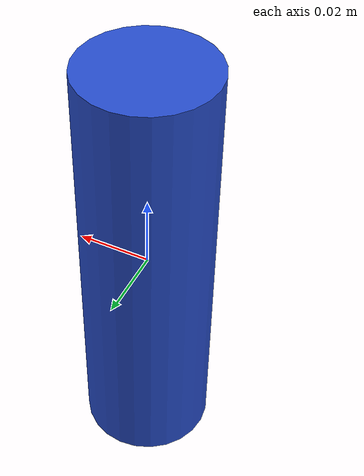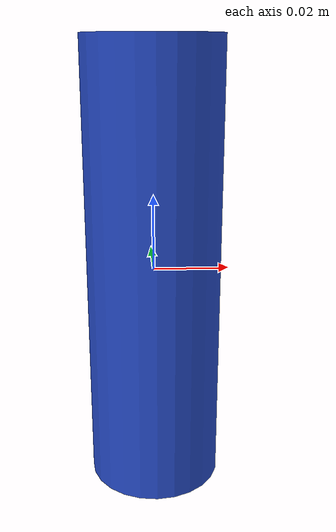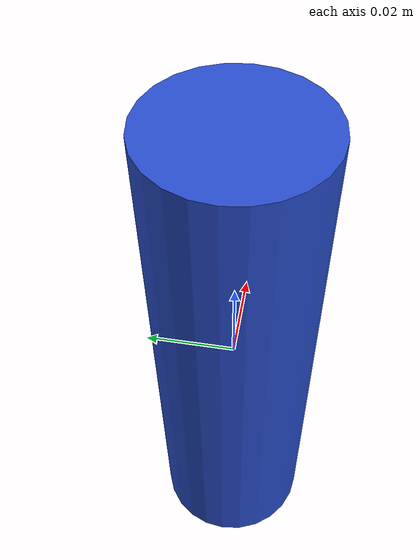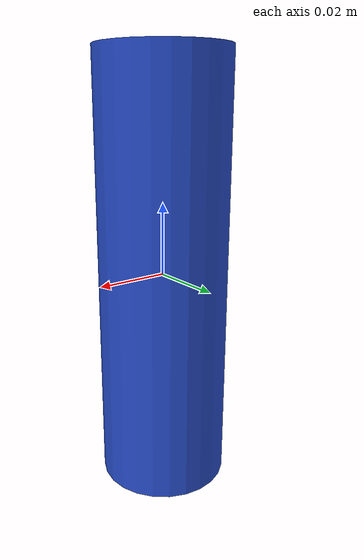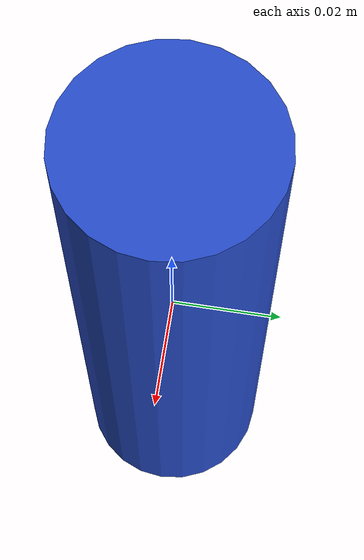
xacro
<?xml version="1.0" ?>

<robot name="target_object_1" xmlns:xacro="http://www.ros.org/wiki/xacro">

  <property name="target_len" value="0.12" />
  <property name="target_width" value="0.018" />

  <xacro:macro name="inertial_matrix" params="mass">
    <inertial>
      <mass value="${mass}" />
      <inertia ixx="0.03" ixy="0.0" ixz="0.0" iyy="0.03" iyz="0.0" izz="0.01" />
    </inertial>
  </xacro:macro>

  <link name="target_link_1">
    <visual>
      <origin xyz="0 0 0" />
      <geometry>
        <cylinder radius="${target_width}" length="${target_len}" />
      </geometry>
    </visual>

    <collision>
      <origin xyz="0 0 0" />
      <geometry>
        <cylinder radius="${target_width}" length="${target_len}" />
      </geometry>
    </collision>

    <xacro:inertial_matrix mass="0.1" />
  </link>

  <gazebo reference="target_link_1">
    <material>Gazebo/Blue</material>
  </gazebo>

</robot>
